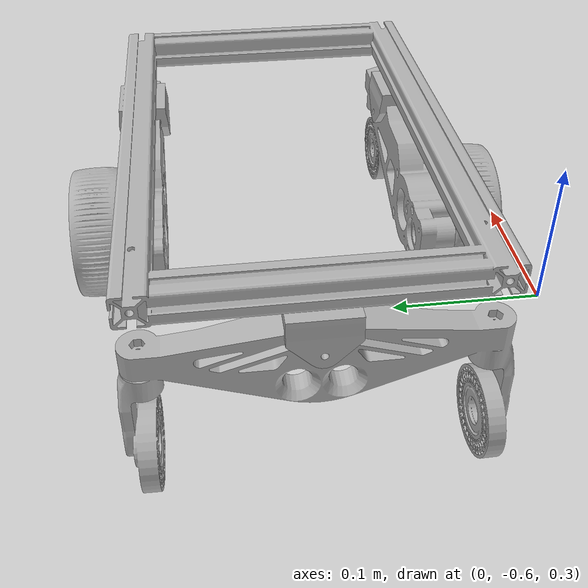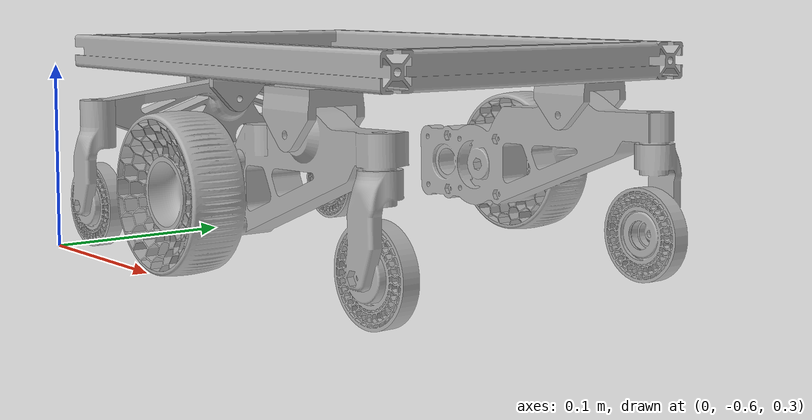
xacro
<?xml version="1.0" ?>
<robot name="URDFv4export" xmlns:xacro="http://www.ros.org/wiki/xacro">

<xacro:include filename="$(find URDFv4export_description)/urdf/materials.xacro" />
<xacro:include filename="$(find URDFv4export_description)/urdf/URDFv4export.trans" />
<xacro:include filename="$(find URDFv4export_description)/urdf/URDFv4export.gazebo" />
<link name="base_link">
  <inertial>
    <origin xyz="0.058138245501266346 -0.4356917184158457 0.3982374386490078" rpy="0 0 0"/>
    <mass value="1.669036100199427"/>
    <inertia ixx="0.010954" iyy="0.021334" izz="0.031913" ixy="-2.8e-05" iyz="0.0" ixz="7.4e-05"/>
  </inertial>
  <visual>
    <origin xyz="0 0 0" rpy="0 0 0"/>
    <geometry>
      <mesh filename="package://URDFv4export_description/meshes/base_link.stl" scale="0.001 0.001 0.001"/>
    </geometry>
    <material name="silver"/>
  </visual>
  <collision>
    <origin xyz="0 0 0" rpy="0 0 0"/>
    <geometry>
      <mesh filename="package://URDFv4export_description/meshes/base_link.stl" scale="0.001 0.001 0.001"/>
    </geometry>
  </collision>
</link>

<link name="back_wheel_1">
  <inertial>
    <origin xyz="-0.0030565675631702705 7.453933822271219e-05 -0.0243059383465119" rpy="0 0 0"/>
    <mass value="1.0328305907835604"/>
    <inertia ixx="0.005772" iyy="0.000756" izz="0.005143" ixy="9e-06" iyz="-1.3e-05" ixz="-4.8e-05"/>
  </inertial>
  <visual>
    <origin xyz="0.090488 0.436102 -0.36973" rpy="0 0 0"/>
    <geometry>
      <mesh filename="package://URDFv4export_description/meshes/back_wheel_1.stl" scale="0.001 0.001 0.001"/>
    </geometry>
    <material name="silver"/>
  </visual>
  <collision>
    <origin xyz="0.090488 0.436102 -0.36973" rpy="0 0 0"/>
    <geometry>
      <mesh filename="package://URDFv4export_description/meshes/back_wheel_1.stl" scale="0.001 0.001 0.001"/>
    </geometry>
  </collision>
</link>

<link name="right_wheel_1">
  <inertial>
    <origin xyz="-0.03922643326067311 -0.008086930603845244 -0.030204983854317358" rpy="0 0 0"/>
    <mass value="1.5935115288825157"/>
    <inertia ixx="0.001114" iyy="0.005844" izz="0.005391" ixy="-0.000485" iyz="-0.000102" ixz="-0.000312"/>
  </inertial>
  <visual>
    <origin xyz="-0.144339 0.529459 -0.36961" rpy="0 0 0"/>
    <geometry>
      <mesh filename="package://URDFv4export_description/meshes/right_wheel_1.stl" scale="0.001 0.001 0.001"/>
    </geometry>
    <material name="silver"/>
  </visual>
  <collision>
    <origin xyz="-0.144339 0.529459 -0.36961" rpy="0 0 0"/>
    <geometry>
      <mesh filename="package://URDFv4export_description/meshes/right_wheel_1.stl" scale="0.001 0.001 0.001"/>
    </geometry>
  </collision>
</link>

<link name="left_wheel_1">
  <inertial>
    <origin xyz="-0.03927003071156297 0.007873469766651764 -0.030204995415972824" rpy="0 0 0"/>
    <mass value="1.5935106808170936"/>
    <inertia ixx="0.001109" iyy="0.005849" izz="0.005391" ixy="0.000459" iyz="0.0001" ixz="-0.000312"/>
  </inertial>
  <visual>
    <origin xyz="-0.143827 0.341455 -0.36961" rpy="0 0 0"/>
    <geometry>
      <mesh filename="package://URDFv4export_description/meshes/left_wheel_1.stl" scale="0.001 0.001 0.001"/>
    </geometry>
    <material name="silver"/>
  </visual>
  <collision>
    <origin xyz="-0.143827 0.341455 -0.36961" rpy="0 0 0"/>
    <geometry>
      <mesh filename="package://URDFv4export_description/meshes/left_wheel_1.stl" scale="0.001 0.001 0.001"/>
    </geometry>
  </collision>
</link>

<joint name="Revolute 1" type="continuous">
  <origin xyz="-0.090488 -0.436102 0.36973" rpy="0 0 0"/>
  <parent link="base_link"/>
  <child link="back_wheel_1"/>
  <axis xyz="-1.0 0.0 0.0"/>
</joint>

<joint name="Revolute 2" type="continuous">
  <origin xyz="0.144339 -0.529459 0.36961" rpy="0 0 0"/>
  <parent link="base_link"/>
  <child link="right_wheel_1"/>
  <axis xyz="-0.0 -1.0 0.0"/>
</joint>

<joint name="Revolute 3" type="continuous">
  <origin xyz="0.143827 -0.341455 0.36961" rpy="0 0 0"/>
  <parent link="base_link"/>
  <child link="left_wheel_1"/>
  <axis xyz="0.005447 -0.999985 0.0"/>
</joint>

</robot>

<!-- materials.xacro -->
<robot name="URDFv4export" xmlns:xacro="http://www.ros.org/wiki/xacro" >

<material name="silver">
  <color rgba="0.700 0.700 0.700 1.000"/>
</material>

</robot>

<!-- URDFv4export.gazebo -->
<robot name="URDFv4export" xmlns:xacro="http://www.ros.org/wiki/xacro" >

<xacro:property name="body_color" value="Gazebo/Silver" />

<gazebo>
  <plugin name="control" filename="libgazebo_ros_control.so"/>
</gazebo>
<gazebo reference="base_link">
  <material>${body_color}</material>
  <mu1>0.2</mu1>
  <mu2>0.2</mu2>
  <selfCollide>true</selfCollide>
  <gravity>true</gravity>
</gazebo>

<gazebo reference="back_wheel_1">
  <material>${body_color}</material>
  <mu1>0.2</mu1>
  <mu2>0.2</mu2>
  <selfCollide>true</selfCollide>
</gazebo>

<gazebo reference="right_wheel_1">
  <material>${body_color}</material>
  <mu1>0.2</mu1>
  <mu2>0.2</mu2>
  <selfCollide>true</selfCollide>
</gazebo>

<gazebo reference="left_wheel_1">
  <material>${body_color}</material>
  <mu1>0.2</mu1>
  <mu2>0.2</mu2>
  <selfCollide>true</selfCollide>
</gazebo>

</robot>
